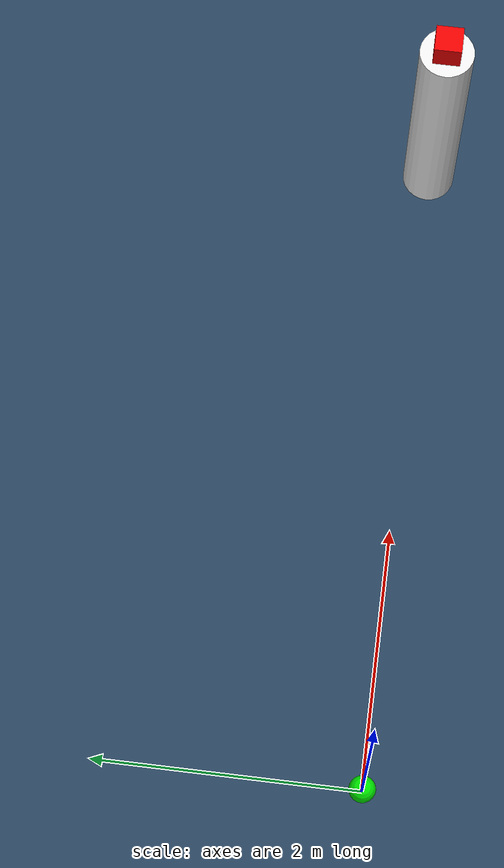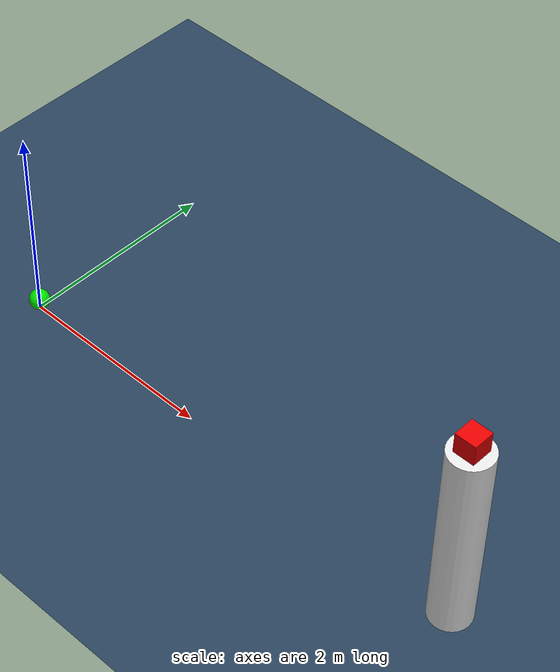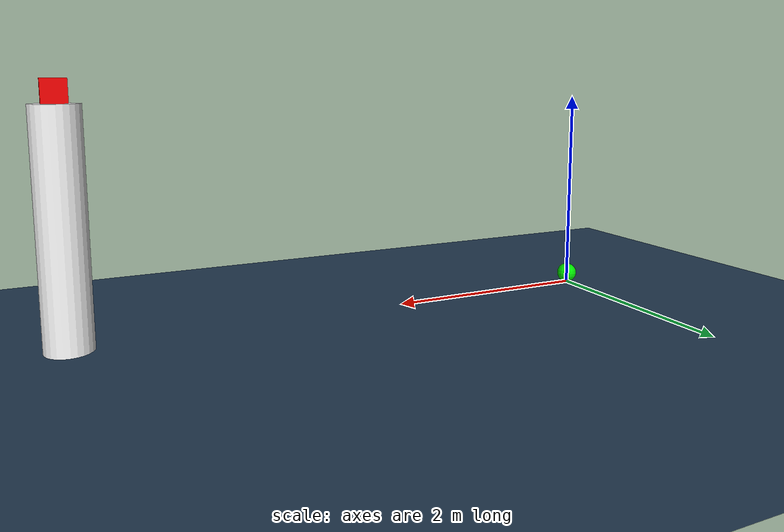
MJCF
<mujoco>
    <asset>
        <material name="white" rgba="0.9 0.9 0.9 1" />
        <material name="red" rgba="0.9 0 0 1" />
        <material name="green" rgba="0 0.9 0 1" />
        <texture name="grid" type="2d" builtin="checker" width="512" height="512" rgb1=".1 .2 .3" rgb2=".2 .3 .4" />
        <material name="grid" texture="grid" texrepeat="1 1" texuniform="true" reflectance=".2" />
    </asset>

    <worldbody>
        <light diffuse="0.3 0.3 0.3" pos="1 0 3" dir="-1 0 -3" />
        <geom type="plane" size="10 10 0.1"  material="grid" />
        <geom type="cylinder" pos="5 0 1" size="0.2 1" material="white" />
        <body pos="0 0 .1">
            <joint type="free" />
            <geom type="sphere" size=".1" mass="1" material="green" />
        </body>
        <body pos="5 0 2.1">
            <joint type="free" />
            <geom type="box" size="0.1 0.1 0.1" mass="0.1" material="red" />
        </body>
    </worldbody>

</mujoco>
